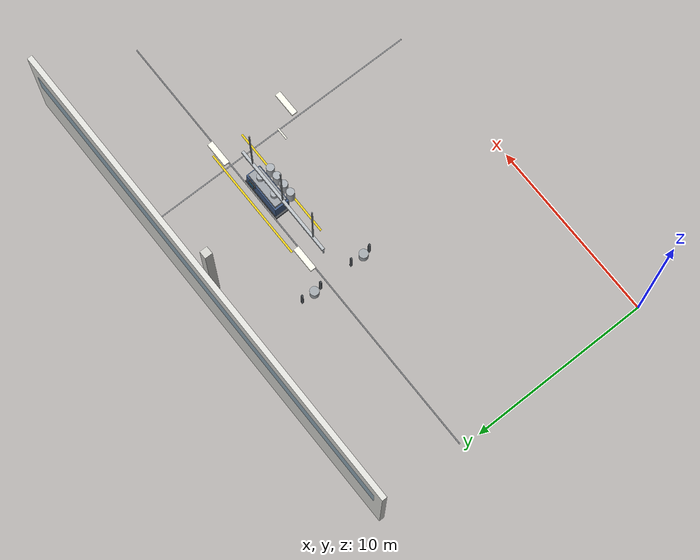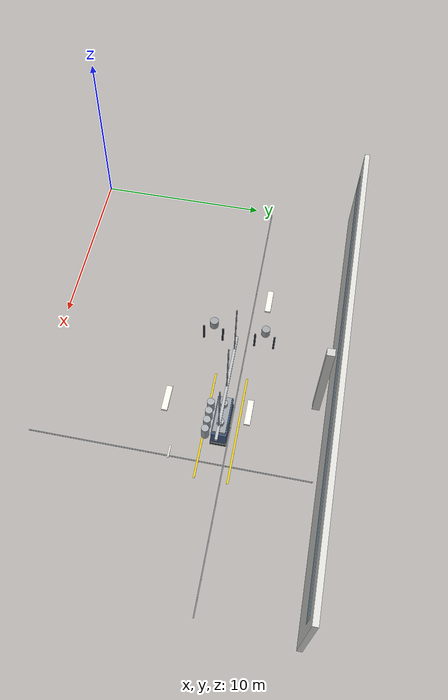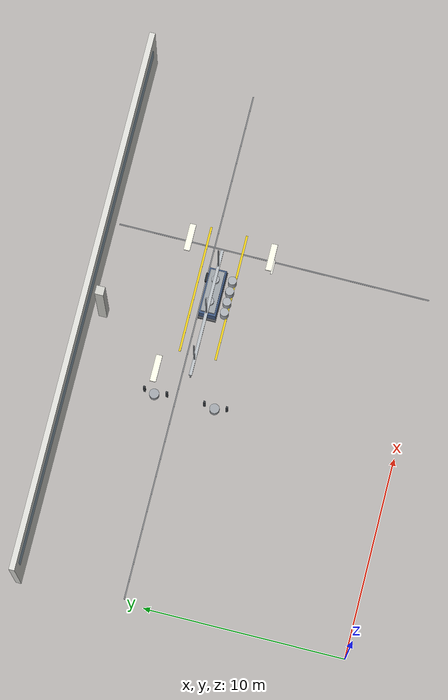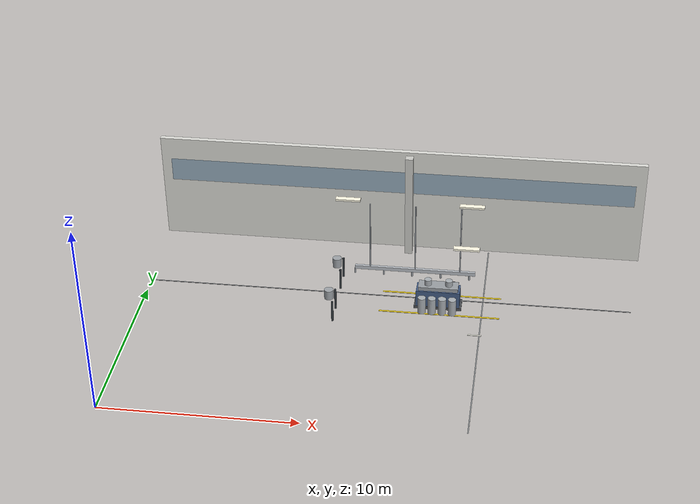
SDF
<sdf version="1.10">
 <world name="textile_mill">
  <model name="wall_north">
   <static>true</static>
   <pose>13.000 16.140 3.000 0 0 0</pose>
   <link name="l">
    <collision name="c"><geometry><box><size>26.560 0.280 6.000</size></box></geometry></collision>
    <visual name="v">
     <geometry><box><size>26.560 0.280 6.000</size></box></geometry>
     <material>
      <ambient>0.860 0.860 0.840 1.0</ambient>
      <diffuse>0.860 0.860 0.840 1.0</diffuse>
      <specular>0.18 0.18 0.18 1</specular>
      <pbr><metal><roughness>0.9</roughness><metalness>0.0</metalness></metal></pbr>
     </material>
    </visual>
   </link>
  </model>
  <model name="win_n">
   <static>true</static>
   <pose>13.000 16.140 4.100 0 0 0</pose>
   <link name="l">
    <collision name="c"><geometry><box><size>25.500 0.300 1.300</size></box></geometry></collision>
    <visual name="v">
     <geometry><box><size>25.500 0.300 1.300</size></box></geometry>
     <material>
      <ambient>0.420 0.580 0.700 0.55</ambient>
      <diffuse>0.420 0.580 0.700 0.55</diffuse>
      <specular>0.18 0.18 0.18 1</specular>
      <pbr><metal><roughness>0.15</roughness><metalness>0.1</metalness></metal></pbr>
     </material>
    </visual>
   </link>
  </model>
  <model name="col_5">
   <static>true</static>
   <pose>13.550 15.450 3.000 0 0 0</pose>
   <link name="l">
    <collision name="c"><geometry><box><size>0.420 0.420 6.000</size></box></geometry></collision>
    <visual name="v">
     <geometry><box><size>0.420 0.420 6.000</size></box></geometry>
     <material>
      <ambient>0.800 0.800 0.780 1.0</ambient>
      <diffuse>0.800 0.800 0.780 1.0</diffuse>
      <specular>0.18 0.18 0.18 1</specular>
      <pbr><metal><roughness>0.85</roughness><metalness>0.0</metalness></metal></pbr>
     </material>
    </visual>
   </link>
  </model>
  <model name="lamp_1_2">
   <static>true</static>
   <pose>10.700 12.000 5.280 0 0 0</pose>
   <link name="l">
    <collision name="c"><geometry><box><size>1.300 0.300 0.100</size></box></geometry></collision>
    <visual name="v">
     <geometry><box><size>1.300 0.300 0.100</size></box></geometry>
     <material>
      <ambient>1.000 0.980 0.900 1.0</ambient>
      <diffuse>1.000 0.980 0.900 1.0</diffuse>
      <specular>0.18 0.18 0.18 1</specular>
      <pbr><metal><roughness>0.3</roughness><metalness>0.0</metalness></metal></pbr>
     </material>
    </visual>
   </link>
  </model>
  <model name="lamp_2_1">
   <static>true</static>
   <pose>17.200 8.000 5.280 0 0 0</pose>
   <link name="l">
    <collision name="c"><geometry><box><size>1.300 0.300 0.100</size></box></geometry></collision>
    <visual name="v">
     <geometry><box><size>1.300 0.300 0.100</size></box></geometry>
     <material>
      <ambient>1.000 0.980 0.900 1.0</ambient>
      <diffuse>1.000 0.980 0.900 1.0</diffuse>
      <specular>0.18 0.18 0.18 1</specular>
      <pbr><metal><roughness>0.3</roughness><metalness>0.0</metalness></metal></pbr>
     </material>
    </visual>
   </link>
  </model>
  <model name="lamp_2_2">
   <static>true</static>
   <pose>17.200 12.000 5.280 0 0 0</pose>
   <link name="l">
    <collision name="c"><geometry><box><size>1.300 0.300 0.100</size></box></geometry></collision>
    <visual name="v">
     <geometry><box><size>1.300 0.300 0.100</size></box></geometry>
     <material>
      <ambient>1.000 0.980 0.900 1.0</ambient>
      <diffuse>1.000 0.980 0.900 1.0</diffuse>
      <specular>0.18 0.18 0.18 1</specular>
      <pbr><metal><roughness>0.3</roughness><metalness>0.0</metalness></metal></pbr>
     </material>
    </visual>
   </link>
  </model>
  <model name="cln_drawing_1">
   <static>true</static>
   <pose>14.400 10.500 2.120 0 0 0</pose>
   <link name="l">
    <collision name="c"><geometry><box><size>6.300 0.150 0.200</size></box></geometry></collision>
    <visual name="v">
     <geometry><box><size>6.300 0.150 0.200</size></box></geometry>
     <material>
      <ambient>0.720 0.740 0.760 1.0</ambient>
      <diffuse>0.720 0.740 0.760 1.0</diffuse>
      <specular>0.18 0.18 0.18 1</specular>
      <pbr><metal><roughness>0.35</roughness><metalness>0.5</metalness></metal></pbr>
     </material>
    </visual>
   </link>
  </model>
  <model name="clnz_drawing_1_0">
   <static>true</static>
   <pose>11.250 10.500 1.880 0.0000 0.0000 0.0000</pose>
   <link name="l">
    <collision name="c">
     <geometry><cylinder><radius>0.045</radius><length>0.300</length></cylinder></geometry>
    </collision>
    <visual name="v">
     <geometry><cylinder><radius>0.045</radius><length>0.300</length></cylinder></geometry>
     <material>
      <ambient>0.580 0.600 0.620 1.0</ambient>
      <diffuse>0.580 0.600 0.620 1.0</diffuse>
      <specular>0.18 0.18 0.18 1</specular>
      <pbr><metal><roughness>0.35</roughness><metalness>0.5</metalness></metal></pbr>
     </material>
    </visual>
   </link>
  </model>
  <model name="clnz_drawing_1_1">
   <static>true</static>
   <pose>12.750 10.500 1.880 0.0000 0.0000 0.0000</pose>
   <link name="l">
    <collision name="c">
     <geometry><cylinder><radius>0.045</radius><length>0.300</length></cylinder></geometry>
    </collision>
    <visual name="v">
     <geometry><cylinder><radius>0.045</radius><length>0.300</length></cylinder></geometry>
     <material>
      <ambient>0.580 0.600 0.620 1.0</ambient>
      <diffuse>0.580 0.600 0.620 1.0</diffuse>
      <specular>0.18 0.18 0.18 1</specular>
      <pbr><metal><roughness>0.35</roughness><metalness>0.5</metalness></metal></pbr>
     </material>
    </visual>
   </link>
  </model>
  <model name="clnz_drawing_1_2">
   <static>true</static>
   <pose>14.250 10.500 1.880 0.0000 0.0000 0.0000</pose>
   <link name="l">
    <collision name="c">
     <geometry><cylinder><radius>0.045</radius><length>0.300</length></cylinder></geometry>
    </collision>
    <visual name="v">
     <geometry><cylinder><radius>0.045</radius><length>0.300</length></cylinder></geometry>
     <material>
      <ambient>0.580 0.600 0.620 1.0</ambient>
      <diffuse>0.580 0.600 0.620 1.0</diffuse>
      <specular>0.18 0.18 0.18 1</specular>
      <pbr><metal><roughness>0.35</roughness><metalness>0.5</metalness></metal></pbr>
     </material>
    </visual>
   </link>
  </model>
  <model name="clnz_drawing_1_3">
   <static>true</static>
   <pose>15.750 10.500 1.880 0.0000 0.0000 0.0000</pose>
   <link name="l">
    <collision name="c">
     <geometry><cylinder><radius>0.045</radius><length>0.300</length></cylinder></geometry>
    </collision>
    <visual name="v">
     <geometry><cylinder><radius>0.045</radius><length>0.300</length></cylinder></geometry>
     <material>
      <ambient>0.580 0.600 0.620 1.0</ambient>
      <diffuse>0.580 0.600 0.620 1.0</diffuse>
      <specular>0.18 0.18 0.18 1</specular>
      <pbr><metal><roughness>0.35</roughness><metalness>0.5</metalness></metal></pbr>
     </material>
    </visual>
   </link>
  </model>
  <model name="clnz_drawing_1_4">
   <static>true</static>
   <pose>17.250 10.500 1.880 0.0000 0.0000 0.0000</pose>
   <link name="l">
    <collision name="c">
     <geometry><cylinder><radius>0.045</radius><length>0.300</length></cylinder></geometry>
    </collision>
    <visual name="v">
     <geometry><cylinder><radius>0.045</radius><length>0.300</length></cylinder></geometry>
     <material>
      <ambient>0.580 0.600 0.620 1.0</ambient>
      <diffuse>0.580 0.600 0.620 1.0</diffuse>
      <specular>0.18 0.18 0.18 1</specular>
      <pbr><metal><roughness>0.35</roughness><metalness>0.5</metalness></metal></pbr>
     </material>
    </visual>
   </link>
  </model>
  <model name="clnh_drawing_1_0">
   <static>true</static>
   <pose>12.050 10.500 4.060 0 0 0</pose>
   <link name="l">
    <collision name="c"><geometry><box><size>0.060 0.060 3.880</size></box></geometry></collision>
    <visual name="v">
     <geometry><box><size>0.060 0.060 3.880</size></box></geometry>
     <material>
      <ambient>0.550 0.570 0.590 1.0</ambient>
      <diffuse>0.550 0.570 0.590 1.0</diffuse>
      <specular>0.18 0.18 0.18 1</specular>
      <pbr><metal><roughness>0.65</roughness><metalness>0.6</metalness></metal></pbr>
     </material>
    </visual>
   </link>
  </model>
  <model name="clnh_drawing_1_1">
   <static>true</static>
   <pose>14.400 10.500 4.060 0 0 0</pose>
   <link name="l">
    <collision name="c"><geometry><box><size>0.060 0.060 3.880</size></box></geometry></collision>
    <visual name="v">
     <geometry><box><size>0.060 0.060 3.880</size></box></geometry>
     <material>
      <ambient>0.550 0.570 0.590 1.0</ambient>
      <diffuse>0.550 0.570 0.590 1.0</diffuse>
      <specular>0.18 0.18 0.18 1</specular>
      <pbr><metal><roughness>0.65</roughness><metalness>0.6</metalness></metal></pbr>
     </material>
    </visual>
   </link>
  </model>
  <model name="clnh_drawing_1_2">
   <static>true</static>
   <pose>16.750 10.500 4.060 0 0 0</pose>
   <link name="l">
    <collision name="c"><geometry><box><size>0.060 0.060 3.880</size></box></geometry></collision>
    <visual name="v">
     <geometry><box><size>0.060 0.060 3.880</size></box></geometry>
     <material>
      <ambient>0.550 0.570 0.590 1.0</ambient>
      <diffuse>0.550 0.570 0.590 1.0</diffuse>
      <specular>0.18 0.18 0.18 1</specular>
      <pbr><metal><roughness>0.65</roughness><metalness>0.6</metalness></metal></pbr>
     </material>
    </visual>
   </link>
  </model>
  <model name="line_drawing_10.5_a">
   <static>true</static>
   <pose>15.775 9.600 0.012 0 0 0</pose>
   <link name="l">
    <visual name="v">
     <geometry><box><size>6.350 0.100 0.020</size></box></geometry>
     <material>
      <ambient>0.920 0.800 0.100 1.0</ambient>
      <diffuse>0.920 0.800 0.100 1.0</diffuse>
      <specular>0.18 0.18 0.18 1</specular>
      <pbr><metal><roughness>0.65</roughness><metalness>0.0</metalness></metal></pbr>
     </material>
    </visual>
   </link>
  </model>
  <model name="line_drawing_10.5_b">
   <static>true</static>
   <pose>15.775 11.400 0.012 0 0 0</pose>
   <link name="l">
    <visual name="v">
     <geometry><box><size>6.350 0.100 0.020</size></box></geometry>
     <material>
      <ambient>0.920 0.800 0.100 1.0</ambient>
      <diffuse>0.920 0.800 0.100 1.0</diffuse>
      <specular>0.18 0.18 0.18 1</specular>
      <pbr><metal><roughness>0.65</roughness><metalness>0.0</metalness></metal></pbr>
     </material>
    </visual>
   </link>
  </model>
  <model name="joint_x_3">
   <static>true</static>
   <pose>18.000 8.000 0.010 0 0 0</pose>
   <link name="l">
    <visual name="v">
     <geometry><box><size>0.060 15.600 0.016</size></box></geometry>
     <material>
      <ambient>0.520 0.530 0.540 1.0</ambient>
      <diffuse>0.520 0.530 0.540 1.0</diffuse>
      <specular>0.18 0.18 0.18 1</specular>
      <pbr><metal><roughness>0.65</roughness><metalness>0.0</metalness></metal></pbr>
     </material>
    </visual>
   </link>
  </model>
  <model name="joint_y_2">
   <static>true</static>
   <pose>13.000 11.000 0.010 0 0 0</pose>
   <link name="l">
    <visual name="v">
     <geometry><box><size>25.600 0.060 0.016</size></box></geometry>
     <material>
      <ambient>0.520 0.530 0.540 1.0</ambient>
      <diffuse>0.520 0.530 0.540 1.0</diffuse>
      <specular>0.18 0.18 0.18 1</specular>
      <pbr><metal><roughness>0.65</roughness><metalness>0.0</metalness></metal></pbr>
     </material>
    </visual>
   </link>
  </model>
  <model name="dash_11">
   <static>true</static>
   <pose>17.750 8.000 0.012 0 0 0</pose>
   <link name="l">
    <visual name="v">
     <geometry><box><size>0.700 0.090 0.020</size></box></geometry>
     <material>
      <ambient>0.900 0.900 0.860 1.0</ambient>
      <diffuse>0.900 0.900 0.860 1.0</diffuse>
      <specular>0.18 0.18 0.18 1</specular>
      <pbr><metal><roughness>0.65</roughness><metalness>0.0</metalness></metal></pbr>
     </material>
    </visual>
   </link>
  </model>
  <model name="carding_machine_2_coiler">
   <static>true</static>
   <pose>10.050 9.000 1.300 0.0000 0.0000 0.0000</pose>
   <link name="l">
    <collision name="c">
     <geometry><cylinder><radius>0.240</radius><length>0.520</length></cylinder></geometry>
    </collision>
    <visual name="v">
     <geometry><cylinder><radius>0.240</radius><length>0.520</length></cylinder></geometry>
     <material>
      <ambient>0.620 0.640 0.660 1.0</ambient>
      <diffuse>0.620 0.640 0.660 1.0</diffuse>
      <specular>0.18 0.18 0.18 1</specular>
      <pbr><metal><roughness>0.3</roughness><metalness>0.6</metalness></metal></pbr>
     </material>
    </visual>
   </link>
  </model>
  <model name="carding_machine_2_post_a_r">
   <static>true</static>
   <pose>10.300 8.440 0.600 0 0 0</pose>
   <link name="l">
    <collision name="c"><geometry><box><size>0.100 0.100 1.200</size></box></geometry></collision>
    <visual name="v">
     <geometry><box><size>0.100 0.100 1.200</size></box></geometry>
     <material>
      <ambient>0.220 0.240 0.260 1.0</ambient>
      <diffuse>0.220 0.240 0.260 1.0</diffuse>
      <specular>0.18 0.18 0.18 1</specular>
      <pbr><metal><roughness>0.65</roughness><metalness>0.5</metalness></metal></pbr>
     </material>
    </visual>
   </link>
  </model>
  <model name="carding_machine_2_post_b_r">
   <static>true</static>
   <pose>10.300 9.560 0.600 0 0 0</pose>
   <link name="l">
    <collision name="c"><geometry><box><size>0.100 0.100 1.200</size></box></geometry></collision>
    <visual name="v">
     <geometry><box><size>0.100 0.100 1.200</size></box></geometry>
     <material>
      <ambient>0.220 0.240 0.260 1.0</ambient>
      <diffuse>0.220 0.240 0.260 1.0</diffuse>
      <specular>0.18 0.18 0.18 1</specular>
      <pbr><metal><roughness>0.65</roughness><metalness>0.5</metalness></metal></pbr>
     </material>
    </visual>
   </link>
  </model>
  <model name="carding_machine_3_coiler">
   <static>true</static>
   <pose>10.050 12.000 1.300 0.0000 0.0000 0.0000</pose>
   <link name="l">
    <collision name="c">
     <geometry><cylinder><radius>0.240</radius><length>0.520</length></cylinder></geometry>
    </collision>
    <visual name="v">
     <geometry><cylinder><radius>0.240</radius><length>0.520</length></cylinder></geometry>
     <material>
      <ambient>0.620 0.640 0.660 1.0</ambient>
      <diffuse>0.620 0.640 0.660 1.0</diffuse>
      <specular>0.18 0.18 0.18 1</specular>
      <pbr><metal><roughness>0.3</roughness><metalness>0.6</metalness></metal></pbr>
     </material>
    </visual>
   </link>
  </model>
  <model name="carding_machine_3_post_a_r">
   <static>true</static>
   <pose>10.300 11.440 0.600 0 0 0</pose>
   <link name="l">
    <collision name="c"><geometry><box><size>0.100 0.100 1.200</size></box></geometry></collision>
    <visual name="v">
     <geometry><box><size>0.100 0.100 1.200</size></box></geometry>
     <material>
      <ambient>0.220 0.240 0.260 1.0</ambient>
      <diffuse>0.220 0.240 0.260 1.0</diffuse>
      <specular>0.18 0.18 0.18 1</specular>
      <pbr><metal><roughness>0.65</roughness><metalness>0.5</metalness></metal></pbr>
     </material>
    </visual>
   </link>
  </model>
  <model name="carding_machine_3_post_b_r">
   <static>true</static>
   <pose>10.300 12.560 0.600 0 0 0</pose>
   <link name="l">
    <collision name="c"><geometry><box><size>0.100 0.100 1.200</size></box></geometry></collision>
    <visual name="v">
     <geometry><box><size>0.100 0.100 1.200</size></box></geometry>
     <material>
      <ambient>0.220 0.240 0.260 1.0</ambient>
      <diffuse>0.220 0.240 0.260 1.0</diffuse>
      <specular>0.18 0.18 0.18 1</specular>
      <pbr><metal><roughness>0.65</roughness><metalness>0.5</metalness></metal></pbr>
     </material>
    </visual>
   </link>
  </model>
  <model name="drawing_machine_1_plinth">
   <static>true</static>
   <pose>15.650 10.500 0.080 0 0 0</pose>
   <link name="l">
    <collision name="c"><geometry><box><size>2.500 0.900 0.160</size></box></geometry></collision>
    <visual name="v">
     <geometry><box><size>2.500 0.900 0.160</size></box></geometry>
     <material>
      <ambient>0.300 0.310 0.330 1.0</ambient>
      <diffuse>0.300 0.310 0.330 1.0</diffuse>
      <specular>0.18 0.18 0.18 1</specular>
      <pbr><metal><roughness>0.65</roughness><metalness>0.4</metalness></metal></pbr>
     </material>
    </visual>
   </link>
  </model>
  <model name="drawing_machine_1_body">
   <static>true</static>
   <pose>15.650 10.500 0.620 0 0 0</pose>
   <link name="l">
    <collision name="c"><geometry><box><size>2.300 0.840 0.920</size></box></geometry></collision>
    <visual name="v">
     <geometry><box><size>2.300 0.840 0.920</size></box></geometry>
     <material>
      <ambient>0.260 0.360 0.520 1.0</ambient>
      <diffuse>0.260 0.360 0.520 1.0</diffuse>
      <specular>0.18 0.18 0.18 1</specular>
      <pbr><metal><roughness>0.45</roughness><metalness>0.25</metalness></metal></pbr>
     </material>
    </visual>
   </link>
  </model>
  <model name="drawing_machine_1_draft">
   <static>true</static>
   <pose>15.650 10.500 1.180 0 0 0</pose>
   <link name="l">
    <collision name="c"><geometry><box><size>2.100 0.700 0.220</size></box></geometry></collision>
    <visual name="v">
     <geometry><box><size>2.100 0.700 0.220</size></box></geometry>
     <material>
      <ambient>0.600 0.620 0.640 1.0</ambient>
      <diffuse>0.600 0.620 0.640 1.0</diffuse>
      <specular>0.18 0.18 0.18 1</specular>
      <pbr><metal><roughness>0.3</roughness><metalness>0.6</metalness></metal></pbr>
     </material>
    </visual>
   </link>
  </model>
  <model name="drawing_machine_1_head_0">
   <static>true</static>
   <pose>15.100 10.500 1.420 0.0000 0.0000 0.0000</pose>
   <link name="l">
    <collision name="c">
     <geometry><cylinder><radius>0.190</radius><length>0.360</length></cylinder></geometry>
    </collision>
    <visual name="v">
     <geometry><cylinder><radius>0.190</radius><length>0.360</length></cylinder></geometry>
     <material>
      <ambient>0.660 0.680 0.700 1.0</ambient>
      <diffuse>0.660 0.680 0.700 1.0</diffuse>
      <specular>0.18 0.18 0.18 1</specular>
      <pbr><metal><roughness>0.3</roughness><metalness>0.6</metalness></metal></pbr>
     </material>
    </visual>
   </link>
  </model>
  <model name="drawing_machine_1_head_1">
   <static>true</static>
   <pose>16.200 10.500 1.420 0.0000 0.0000 0.0000</pose>
   <link name="l">
    <collision name="c">
     <geometry><cylinder><radius>0.190</radius><length>0.360</length></cylinder></geometry>
    </collision>
    <visual name="v">
     <geometry><cylinder><radius>0.190</radius><length>0.360</length></cylinder></geometry>
     <material>
      <ambient>0.660 0.680 0.700 1.0</ambient>
      <diffuse>0.660 0.680 0.700 1.0</diffuse>
      <specular>0.18 0.18 0.18 1</specular>
      <pbr><metal><roughness>0.3</roughness><metalness>0.6</metalness></metal></pbr>
     </material>
    </visual>
   </link>
  </model>
  <model name="drawing_machine_1_creel_0">
   <static>true</static>
   <pose>14.850 9.720 0.480 0.0000 0.0000 0.0000</pose>
   <link name="l">
    <collision name="c">
     <geometry><cylinder><radius>0.210</radius><length>0.920</length></cylinder></geometry>
    </collision>
    <visual name="v">
     <geometry><cylinder><radius>0.210</radius><length>0.920</length></cylinder></geometry>
     <material>
      <ambient>0.660 0.680 0.700 1.0</ambient>
      <diffuse>0.660 0.680 0.700 1.0</diffuse>
      <specular>0.18 0.18 0.18 1</specular>
      <pbr><metal><roughness>0.65</roughness><metalness>0.0</metalness></metal></pbr>
     </material>
    </visual>
   </link>
  </model>
  <model name="drawing_machine_1_creel_1">
   <static>true</static>
   <pose>15.380 9.720 0.480 0.0000 0.0000 0.0000</pose>
   <link name="l">
    <collision name="c">
     <geometry><cylinder><radius>0.210</radius><length>0.920</length></cylinder></geometry>
    </collision>
    <visual name="v">
     <geometry><cylinder><radius>0.210</radius><length>0.920</length></cylinder></geometry>
     <material>
      <ambient>0.660 0.680 0.700 1.0</ambient>
      <diffuse>0.660 0.680 0.700 1.0</diffuse>
      <specular>0.18 0.18 0.18 1</specular>
      <pbr><metal><roughness>0.65</roughness><metalness>0.0</metalness></metal></pbr>
     </material>
    </visual>
   </link>
  </model>
  <model name="drawing_machine_1_creel_2">
   <static>true</static>
   <pose>15.920 9.720 0.480 0.0000 0.0000 0.0000</pose>
   <link name="l">
    <collision name="c">
     <geometry><cylinder><radius>0.210</radius><length>0.920</length></cylinder></geometry>
    </collision>
    <visual name="v">
     <geometry><cylinder><radius>0.210</radius><length>0.920</length></cylinder></geometry>
     <material>
      <ambient>0.660 0.680 0.700 1.0</ambient>
      <diffuse>0.660 0.680 0.700 1.0</diffuse>
      <specular>0.18 0.18 0.18 1</specular>
      <pbr><metal><roughness>0.65</roughness><metalness>0.0</metalness></metal></pbr>
     </material>
    </visual>
   </link>
  </model>
  <model name="drawing_machine_1_creel_3">
   <static>true</static>
   <pose>16.450 9.720 0.480 0.0000 0.0000 0.0000</pose>
   <link name="l">
    <collision name="c">
     <geometry><cylinder><radius>0.210</radius><length>0.920</length></cylinder></geometry>
    </collision>
    <visual name="v">
     <geometry><cylinder><radius>0.210</radius><length>0.920</length></cylinder></geometry>
     <material>
      <ambient>0.660 0.680 0.700 1.0</ambient>
      <diffuse>0.660 0.680 0.700 1.0</diffuse>
      <specular>0.18 0.18 0.18 1</specular>
      <pbr><metal><roughness>0.65</roughness><metalness>0.0</metalness></metal></pbr>
     </material>
    </visual>
   </link>
  </model>
  <model name="drawing_machine_1_panel">
   <static>true</static>
   <pose>16.270 10.960 1.020 0 0 0</pose>
   <link name="l">
    <collision name="c"><geometry><box><size>0.420 0.100 0.360</size></box></geometry></collision>
    <visual name="v">
     <geometry><box><size>0.420 0.100 0.360</size></box></geometry>
     <material>
      <ambient>0.160 0.170 0.190 1.0</ambient>
      <diffuse>0.160 0.170 0.190 1.0</diffuse>
      <specular>0.18 0.18 0.18 1</specular>
      <pbr><metal><roughness>0.65</roughness><metalness>0.0</metalness></metal></pbr>
     </material>
    </visual>
   </link>
  </model>
  <model name="drawing_machine_1_screen">
   <static>true</static>
   <pose>16.270 11.010 1.040 0 0 0</pose>
   <link name="l">
    <collision name="c"><geometry><box><size>0.320 0.030 0.240</size></box></geometry></collision>
    <visual name="v">
     <geometry><box><size>0.320 0.030 0.240</size></box></geometry>
     <material>
      <ambient>0.200 0.550 0.720 1.0</ambient>
      <diffuse>0.200 0.550 0.720 1.0</diffuse>
      <specular>0.18 0.18 0.18 1</specular>
      <pbr><metal><roughness>0.65</roughness><metalness>0.0</metalness></metal></pbr>
     </material>
    </visual>
   </link>
  </model>
 </world>
</sdf>
